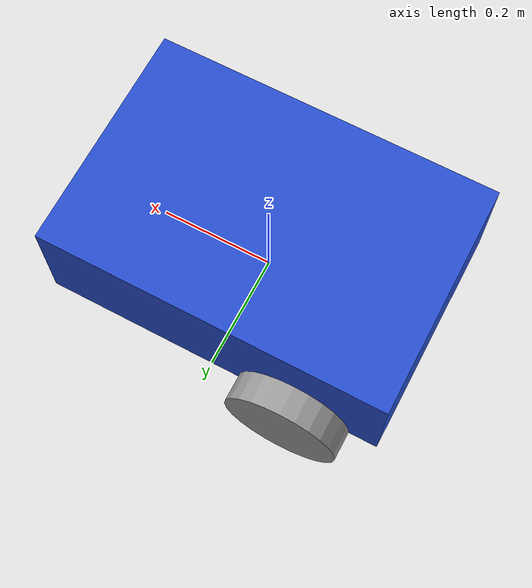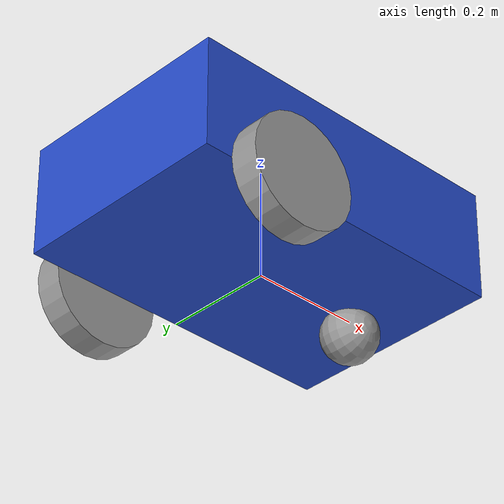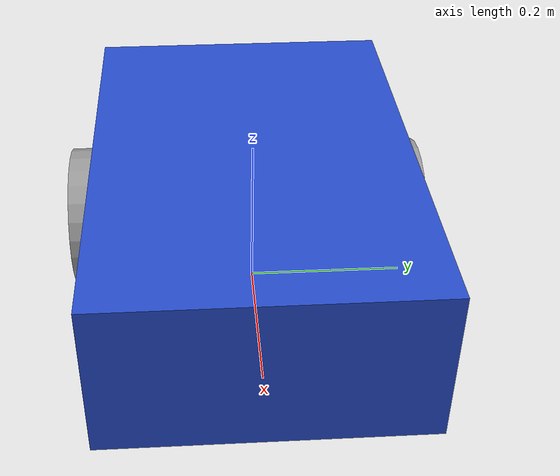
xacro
<?xml version="1.0"?>

<robot xmlns:xacro="http://www.ros.org/wiki/xacro">

    <xacro:property name="base_length" value="0.6" />
    <xacro:property name="base_width" value="0.4" />
    <xacro:property name="base_height" value="0.2" />
    <xacro:property name="wheel_radius" value="0.1" />
    <xacro:property name="wheel_length" value="0.05" />

    <link name="base_link">
        <visual>
            <geometry>
                <box size="${base_length} ${base_width} ${base_height}"/>
            </geometry>
            <origin xyz="0 0 0.1" rpy="0 0 0"/>
            <material name="blue"/>
        </visual>
        <collision>
            <geometry>
                <box size="${base_length} ${base_width} ${base_height}"/>
            </geometry>
            <origin xyz="0 0 0.1" rpy="0 0 0"/>
        </collision>
        <xacro:box_inertia m="5.0" x="${base_length}" y="${base_width}" z="${base_height}"
                            o_xyz="0 0 ${base_height/2.0}" o_rpy="0 0 0" />
    </link>

    <xacro:macro name="wheel_link" params="prefix">
        <link name="${prefix}_wheel_link">
            <visual>
                <geometry>
                    <cylinder radius="${wheel_radius}" length="0.05"/>
                </geometry>
                <origin xyz="0 0 0 " rpy="${pi / 2.0} 0 0" />
                <material name="gray" />
            </visual>
            <collision>
                <geometry>
                    <sphere radius="${wheel_radius}" />
                </geometry>
                <origin xyz="0 0 0" rpy="0 0 0" />
            </collision>
            <xacro:cylinder_inertia m="1.0" r="${wheel_radius}" l="${wheel_length}" o_xyz="0 0 0" o_rpy="${pi / 2.0} 0 0" />
        </link>
    </xacro:macro>

    <xacro:wheel_link prefix="right" />
    <xacro:wheel_link prefix="left" />

    <link name="caster_wheel_link">
        <visual>
            <geometry>
                <sphere radius="${wheel_radius / 2.0}"/>
            </geometry>
            <origin xyz="0.2 0 -0.025" rpy="1.57 0 0" />
            <material name="gray" />
        </visual>
        <collision>
            <geometry>
                <sphere radius="${wheel_radius / 2.0}"/>
            </geometry>
            <origin xyz="0.2 0 -0.025" rpy="1.57 0 0" />
        </collision>
        <xacro:sphere_inertia m="0.5" r="${wheel_radius / 2.0}" o_xyz="0.2 0 -0.025" o_rpy="1.57 0 0" />
    </link>

    <!-- [[[joint section]]] -->

    <joint name="base_right_wheel_joint" type="continuous">
        <parent link="base_link" />
        <child link="right_wheel_link" />
        <origin xyz="${-base_length / 4.0} ${-(base_width +  wheel_length) / 2.0} 0" rpy="0 0 0" />
        <axis xyz="0 1 0" />
    </joint>

    <joint name="base_left_wheel_joint" type="continuous">
        <parent link="base_link" />
        <child link="left_wheel_link" />
        <origin xyz="-0.15 0.225 0" rpy="0 0 0" />
        <axis xyz="0 1 0" />
    </joint>

    <joint name="base_caster_wheel_joint" type="fixed">
        <parent link="base_link" />
        <child link="caster_wheel_link" />
        <origin xyz="0 0 0" rpy="0 0 0" />
        <axis xyz="0 0 0" />
    </joint>

</robot>
